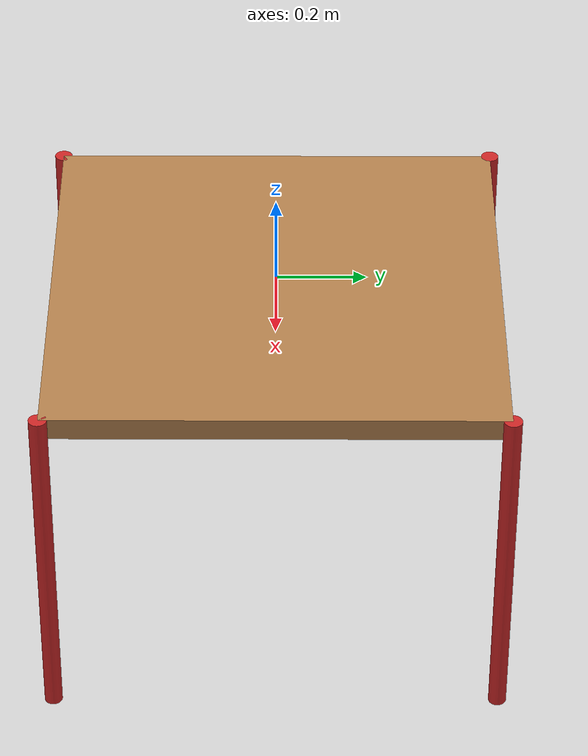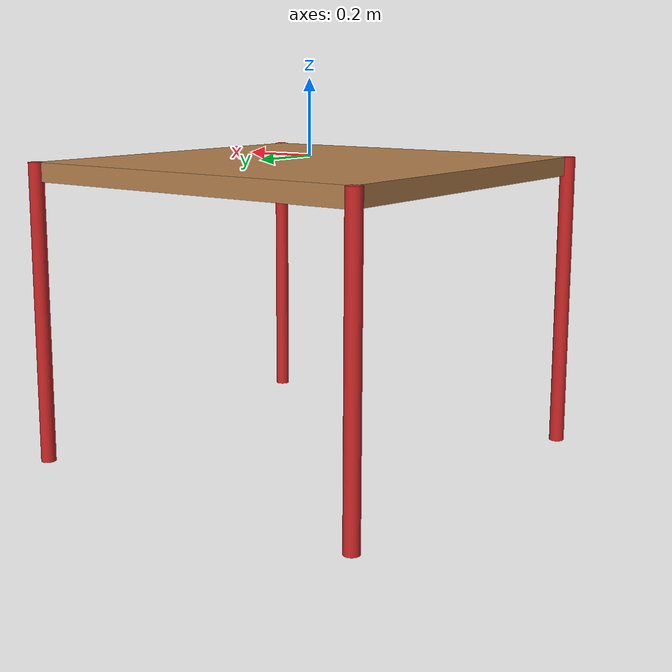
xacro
<?xml version="1.0"?>
<robot xmlns:xacro="http://ros.org/wiki/xacro" name="table">

  <!-- Properties -->
  <xacro:property name="table_height" value="0.8" />
  <xacro:property name="table_width" value="1.0" />
  <xacro:property name="table_depth" value="1.0" />
  <xacro:property name="leg_radius" value="0.02" />
  <xacro:property name="table_x" value="0.0" />
  <xacro:property name="table_y" value="0.0" />
  <xacro:property name="table_z" value="-0.81" /> <!-- Agar permukaan meja sejajar z=0 -->
  <xacro:property name="table_top_thickness" value="0.05" />
  <xacro:property name="M_PI" value="3.1415926535897931" />

  <!-- Macro to define a table leg -->
  <xacro:macro name="table_leg" params="name pos_x pos_y">
    <joint name="${name}_joint" type="fixed">
      <parent link="table_top_link" />
      <origin xyz="${pos_x} ${pos_y} ${table_z + table_height}" rpy="0 0 0" />
      <child link="${name}_link" />
    </joint>

    <link name="${name}_link">
      <inertial>
        <mass value="1.0" />
        <origin xyz="0 0 ${-table_height/2}" />
        <inertia ixx="0.1" ixy="0" ixz="0" iyy="0.1" iyz="0" izz="0.01" />
      </inertial>
      <visual>
        <origin xyz="0.0 0.0 ${-table_height/2}" rpy="0 0 0" />
        <geometry>
          <cylinder radius="${leg_radius}" length="${table_height}" />
        </geometry>
      </visual>
      <collision>
        <origin xyz="0.0 0.0 ${-table_height/2}" rpy="0.0 0.0 0.0" />
        <geometry>
          <cylinder radius="${leg_radius}" length="${table_height}" />
        </geometry>
      </collision>
    </link>

    <gazebo reference="${name}_link">
      <material>Gazebo/Red</material>
      <mu1>1000.0</mu1>
      <mu2>1000.0</mu2>
      <kp>10000000.0</kp>
      <kd>1.0</kd>
      <selfCollide>true</selfCollide>
    </gazebo>
  </xacro:macro>

  <!-- Tabletop -->
  <link name="table_top_link">
    <inertial>
      <mass value="1.0" />
      <origin xyz="${table_x} ${table_y} ${table_z + table_height - table_top_thickness / 2}" />
      <inertia ixx="1" ixy="0" ixz="0" iyy="1" iyz="0" izz="1" />
    </inertial>
    <visual>
      <origin xyz="${table_x} ${table_y} ${table_z + table_height - table_top_thickness / 2}" />
      <geometry>
        <box size="${table_width} ${table_depth} ${table_top_thickness}" />
      </geometry>
    </visual>
    <collision>
      <origin xyz="${table_x} ${table_y} ${table_z + table_height - table_top_thickness / 2}" />
      <geometry>
        <box size="${table_width} ${table_depth} ${table_top_thickness}" />
      </geometry>
    </collision>
  </link>

  <gazebo reference="table_top_link">
    <material>Gazebo/LightWood</material>
    <mu1>50.0</mu1>
    <mu2>50.0</mu2>
    <kp>1000000.0</kp>
    <kd>1.0</kd>
  </gazebo>

  <!-- Generate 4 legs using macro -->
  <xacro:table_leg name="leg1" pos_x="${table_x + table_width / 2}" pos_y="${table_y + table_depth / 2}" />
  <xacro:table_leg name="leg2" pos_x="${table_x - table_width / 2}" pos_y="${table_y + table_depth / 2}" />
  <xacro:table_leg name="leg3" pos_x="${table_x + table_width / 2}" pos_y="${table_y - table_depth / 2}" />
  <xacro:table_leg name="leg4" pos_x="${table_x - table_width / 2}" pos_y="${table_y - table_depth / 2}" />

  <!-- Define canonical body -->
  <gazebo>
    <canonicalBody>table_top_link</canonicalBody>
  </gazebo>

</robot>
